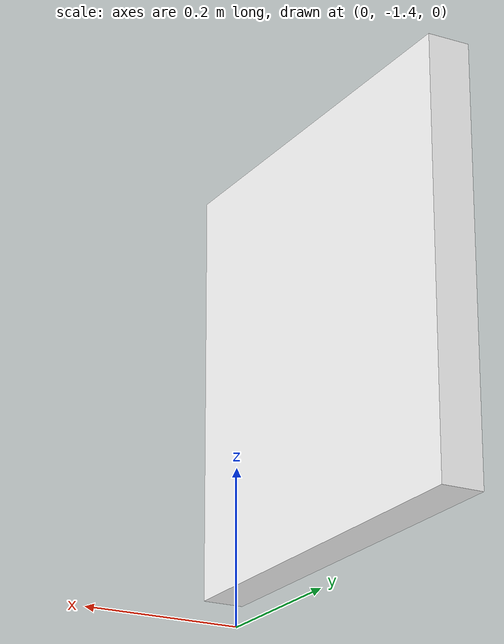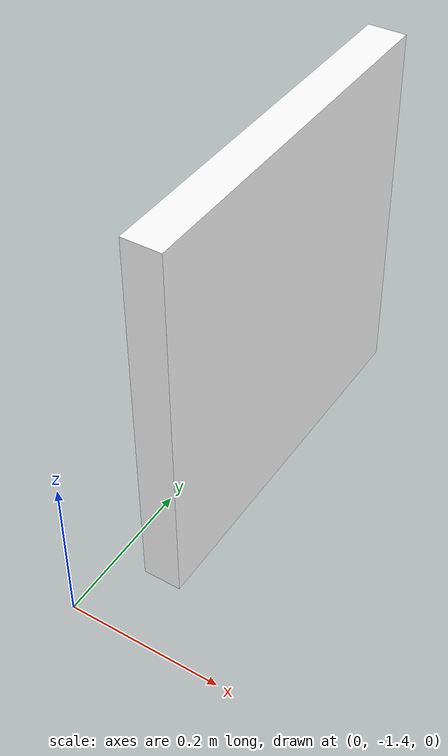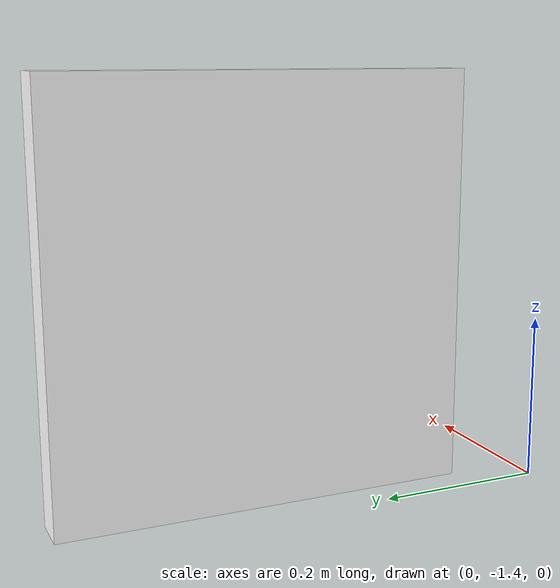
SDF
<?xml version='1.0'?>
<sdf version='1.7'>
  <model name='noPark'>
    <pose>0.065 -0.9125 0 0 -0 0</pose>
    <link name='Wall_0'>
      <collision name='Wall_0_Collision'>
        <geometry>
          <box>
            <size>0.05 0.5 0.5</size>
          </box>
        </geometry>
        <pose>0 0 0.25 0 -0 0</pose>
      </collision>
      <visual name='Wall_0_Visual'>
        <pose>0 0 0.25 0 -0 0</pose>
        <geometry>
          <box>
            <size>0.05 0.5 0.5</size>
          </box>
        </geometry>
        <material>
          <script>
            <uri>../noPark/materials/scripts</uri>
          <uri>../noPark/materials/textures</uri>
          <name>noParkTexture</name>
          </script>
          <ambient>1 1 1 1</ambient>
        </material>
        <meta>
          <layer>0</layer>
        </meta>
      </visual>
      <pose>0 -0.15 0 0 -0 0</pose>
    </link>
    <static>1</static>
  </model>
</sdf>
